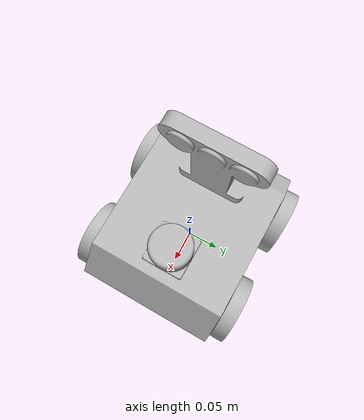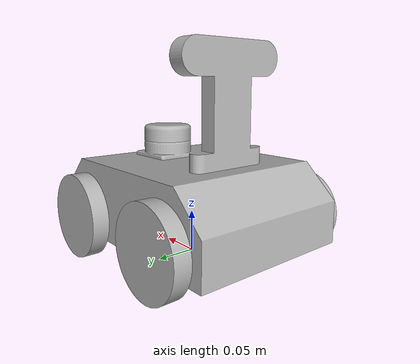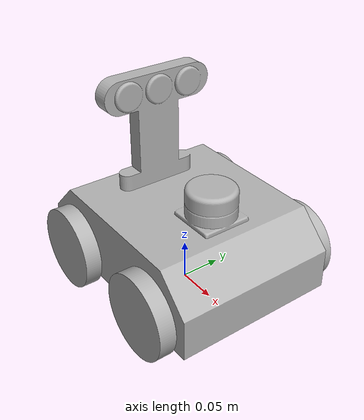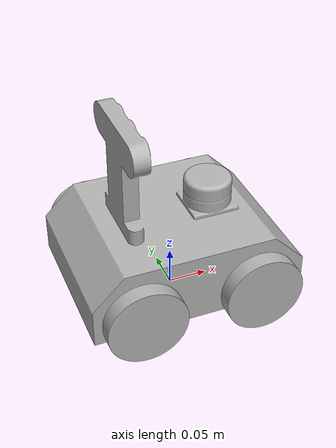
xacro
<?xml version="1.0" ?>
<robot name="mybot" xmlns:xacro="http://www.ros.org/wiki/xacro">

<xacro:include filename="$(find mybot_description)/urdf/materials.xacro" />
<xacro:include filename="$(find mybot_description)/urdf/mybot.trans" />
<xacro:include filename="$(find mybot_description)/urdf/mybot.gazebo" />
<link name="base_link">
  <inertial>
    <origin xyz="-0.002382690782326015 3.364769060872986e-10 0.07496508207587516" rpy="0 0 0"/>
    <mass value="7.937133029005271"/>
    <inertia ixx="0.037302" iyy="0.054302" izz="0.067425" ixy="-0.0" iyz="-0.0" ixz="0.002637"/>
  </inertial>
  <visual>
    <origin xyz="0 0 0" rpy="0 0 0"/>
    <geometry>
      <mesh filename="package://mybot_description/meshes/base_link.stl" scale="0.001 0.001 0.001"/>
    </geometry>
    <material name="silver"/>
  </visual>
  <collision>
    <origin xyz="0 0 0" rpy="0 0 0"/>
    <geometry>
      <mesh filename="package://mybot_description/meshes/base_link.stl" scale="0.001 0.001 0.001"/>
    </geometry>
  </collision>
</link>

<link name="rfront_wheel_1">
  <inertial>
    <origin xyz="-2.7755575615628914e-17 -0.009999999999999995 -1.3877787807814457e-17" rpy="0 0 0"/>
    <mass value="0.14608405839192537"/>
    <inertia ixx="9.6e-05" iyy="0.000183" izz="9.6e-05" ixy="0.0" iyz="0.0" ixz="-0.0"/>
  </inertial>
  <visual>
    <origin xyz="-0.075 0.102 -0.05" rpy="0 0 0"/>
    <geometry>
      <mesh filename="package://mybot_description/meshes/rfront_wheel_1.stl" scale="0.001 0.001 0.001"/>
    </geometry>
    <material name="silver"/>
  </visual>
  <collision>
    <origin xyz="-0.075 0.102 -0.05" rpy="0 0 0"/>
    <geometry>
      <mesh filename="package://mybot_description/meshes/rfront_wheel_1.stl" scale="0.001 0.001 0.001"/>
    </geometry>
  </collision>
</link>

<link name="rback_wheel_1">
  <inertial>
    <origin xyz="-1.117587078436344e-09 -0.009999999999999995 3.725290215195187e-10" rpy="0 0 0"/>
    <mass value="0.14608405839192537"/>
    <inertia ixx="9.6e-05" iyy="0.000183" izz="9.6e-05" ixy="-0.0" iyz="-0.0" ixz="-0.0"/>
  </inertial>
  <visual>
    <origin xyz="0.075 0.102 -0.05" rpy="0 0 0"/>
    <geometry>
      <mesh filename="package://mybot_description/meshes/rback_wheel_1.stl" scale="0.001 0.001 0.001"/>
    </geometry>
    <material name="silver"/>
  </visual>
  <collision>
    <origin xyz="0.075 0.102 -0.05" rpy="0 0 0"/>
    <geometry>
      <mesh filename="package://mybot_description/meshes/rback_wheel_1.stl" scale="0.001 0.001 0.001"/>
    </geometry>
  </collision>
</link>

<link name="lfront_wheel_1">
  <inertial>
    <origin xyz="-2.7755575615628914e-17 0.009999999999999995 -1.3877787807814457e-17" rpy="0 0 0"/>
    <mass value="0.14608405839192537"/>
    <inertia ixx="9.6e-05" iyy="0.000183" izz="9.6e-05" ixy="-0.0" iyz="0.0" ixz="-0.0"/>
  </inertial>
  <visual>
    <origin xyz="-0.075 -0.102 -0.05" rpy="0 0 0"/>
    <geometry>
      <mesh filename="package://mybot_description/meshes/lfront_wheel_1.stl" scale="0.001 0.001 0.001"/>
    </geometry>
    <material name="silver"/>
  </visual>
  <collision>
    <origin xyz="-0.075 -0.102 -0.05" rpy="0 0 0"/>
    <geometry>
      <mesh filename="package://mybot_description/meshes/lfront_wheel_1.stl" scale="0.001 0.001 0.001"/>
    </geometry>
  </collision>
</link>

<link name="lback_wheel_1">
  <inertial>
    <origin xyz="0.0 0.009999999999999995 -1.3877787807814457e-17" rpy="0 0 0"/>
    <mass value="0.14608405839192537"/>
    <inertia ixx="9.6e-05" iyy="0.000183" izz="9.6e-05" ixy="0.0" iyz="-0.0" ixz="0.0"/>
  </inertial>
  <visual>
    <origin xyz="0.075 -0.102 -0.05" rpy="0 0 0"/>
    <geometry>
      <mesh filename="package://mybot_description/meshes/lback_wheel_1.stl" scale="0.001 0.001 0.001"/>
    </geometry>
    <material name="silver"/>
  </visual>
  <collision>
    <origin xyz="0.075 -0.102 -0.05" rpy="0 0 0"/>
    <geometry>
      <mesh filename="package://mybot_description/meshes/lback_wheel_1.stl" scale="0.001 0.001 0.001"/>
    </geometry>
  </collision>
</link>

<link name="lidar_1">
  <inertial>
    <origin xyz="1.0547118733938987e-15 -1.4524086945791698e-15 0.009844686326029056" rpy="0 0 0"/>
    <mass value="0.4362639747381986"/>
    <inertia ixx="0.000111" iyy="0.000111" izz="0.000193" ixy="0.0" iyz="0.0" ixz="0.0"/>
  </inertial>
  <visual>
    <origin xyz="-0.05 0.0 -0.135" rpy="0 0 0"/>
    <geometry>
      <mesh filename="package://mybot_description/meshes/lidar_1.stl" scale="0.001 0.001 0.001"/>
    </geometry>
    <material name="silver"/>
  </visual>
  <collision>
    <origin xyz="-0.05 0.0 -0.135" rpy="0 0 0"/>
    <geometry>
      <mesh filename="package://mybot_description/meshes/lidar_1.stl" scale="0.001 0.001 0.001"/>
    </geometry>
  </collision>
</link>

<joint name="Revolute 1" type="continuous">
  <origin xyz="0.075 -0.102 0.05" rpy="0 0 0"/>
  <parent link="base_link"/>
  <child link="rfront_wheel_1"/>
  <axis xyz="0.0 -1.0 0.0"/>
</joint>

<joint name="Revolute 2" type="continuous">
  <origin xyz="-0.075 -0.102 0.05" rpy="0 0 0"/>
  <parent link="base_link"/>
  <child link="rback_wheel_1"/>
  <axis xyz="0.0 -1.0 0.0"/>
</joint>

<joint name="Revolute 3" type="continuous">
  <origin xyz="0.075 0.102 0.05" rpy="0 0 0"/>
  <parent link="base_link"/>
  <child link="lfront_wheel_1"/>
  <axis xyz="0.0 1.0 0.0"/>
</joint>

<joint name="Revolute 4" type="continuous">
  <origin xyz="-0.075 0.102 0.05" rpy="0 0 0"/>
  <parent link="base_link"/>
  <child link="lback_wheel_1"/>
  <axis xyz="0.0 1.0 0.0"/>
</joint>

<joint name="Revolute 5" type="continuous">
  <origin xyz="0.05 0.0 0.135" rpy="0 0 0"/>
  <parent link="base_link"/>
  <child link="lidar_1"/>
  <axis xyz="0.0 0.0 1.0"/>
</joint>

</robot>

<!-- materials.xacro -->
<robot name="mybot" xmlns:xacro="http://www.ros.org/wiki/xacro" >

<material name="silver">
  <color rgba="0.700 0.700 0.700 1.000"/>
</material>

</robot>

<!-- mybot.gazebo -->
<robot name="mybot" xmlns:xacro="http://www.ros.org/wiki/xacro" >

<xacro:property name="body_color" value="Gazebo/Silver" />

<gazebo>
  <plugin name="control" filename="libgazebo_ros_control.so"/>
</gazebo>
<gazebo reference="base_link">
  <material>${body_color}</material>
  <mu1>0.2</mu1>
  <mu2>0.2</mu2>
  <selfCollide>true</selfCollide>
  <gravity>true</gravity>
</gazebo>

<gazebo reference="rfront_wheel_1">
  <material>${body_color}</material>
  <mu1>0.2</mu1>
  <mu2>0.2</mu2>
  <selfCollide>true</selfCollide>
</gazebo>

<gazebo reference="rback_wheel_1">
  <material>${body_color}</material>
  <mu1>0.2</mu1>
  <mu2>0.2</mu2>
  <selfCollide>true</selfCollide>
</gazebo>

<gazebo reference="lfront_wheel_1">
  <material>${body_color}</material>
  <mu1>0.2</mu1>
  <mu2>0.2</mu2>
  <selfCollide>true</selfCollide>
</gazebo>

<gazebo reference="lback_wheel_1">
  <material>${body_color}</material>
  <mu1>0.2</mu1>
  <mu2>0.2</mu2>
  <selfCollide>true</selfCollide>
</gazebo>

<gazebo reference="lidar_1">
  <material>${body_color}</material>
  <mu1>0.2</mu1>
  <mu2>0.2</mu2>
  <selfCollide>true</selfCollide>
</gazebo>

</robot>
